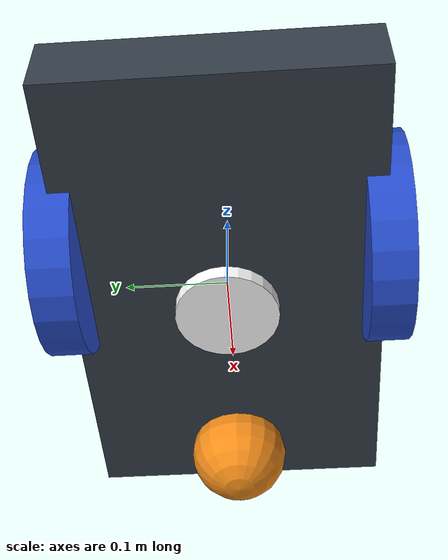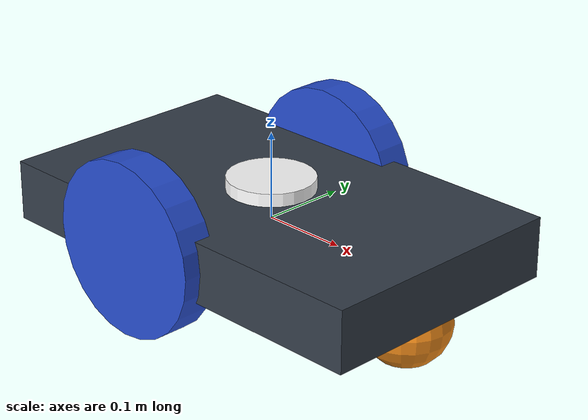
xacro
<?xml version="1.0" ?>

<robot name="iabot" xmlns:xacro="https://www.ros.org/wiki/xacro" >

  <xacro:include filename="$(find iabot_description)/urdf/materials.xacro" />
  <xacro:include filename="$(find iabot_description)/urdf/gazebo.xacro" />
  <xacro:include filename="$(find iabot_description)/urdf/macro.xacro" />

  <!-- Defining link chassis -->
  <link name="base_link">
    <!-- pose and inertial -->
    <pose>0 0 0.1 0 0 0</pose>

    <!-- Inertial properties -->
    <inertial>
      <mass value="5"/>
      <origin rpy="0 0 0" xyz="0 0 0.1"/>
      <inertia ixx="0.0395416666667" ixy="0" ixz="0" iyy="0.106208333333" iyz="0" izz="0.106208333333"/>
    </inertial>
    <!-- Collision properties -->
    <collision name="collision_chassis">
      <geometry>
        <box size="0.5 0.3 0.07"/>
      </geometry>
    </collision>
    <!-- Visual properties -->
    <visual>
      <origin rpy="0 0 0" xyz="0 0 0"/>
      <geometry>
        <box size="0.5 0.3 0.07"/>
      </geometry>
      <material name="blue"/>
    </visual>

    <!-- caster front -->
    <collision name="caster_front_collision">
      <origin rpy=" 0 0 0" xyz="0.35 0 -0.05"/>
      <geometry>
        <sphere radius="0.05"/>
      </geometry>
      <surface>
        <friction>
          <ode>
            <mu>0</mu>
            <mu2>0</mu2>
            <slip1>1.0</slip1>
            <slip2>1.0</slip2>
          </ode>
        </friction>
      </surface>
    </collision>
    <visual name="caster_front_visual">
      <origin rpy=" 0 0 0" xyz="0.2 0 -0.05"/>
      <geometry>
        <sphere radius="0.05"/>
      </geometry>
    </visual>
    </link>

  <!--
    Replace the wheel links with the following lines for macros:
  -->
  <xacro:link_wheel name="link_right_wheel" />
  <xacro:link_wheel name="link_left_wheel" />

  <xacro:joint_wheel name="joint_right_wheel"  child="link_right_wheel"  origin_xyz="-0.05 0.15 0"  />
  <xacro:joint_wheel name="joint_left_wheel"   child="link_left_wheel"   origin_xyz="-0.05 -0.15 0"  />

  <!--
    Adding a laser scan sensor to the robot
  -->
  <link name="laser_link">
    <inertial>
      <origin xyz="0 0 0" rpy="0 0 0"/>
      <mass value="1" />
      <!-- RANDOM INERTIA BELOW -->

      <xacro:cylinder_inertia mass="1" r="0.05" l="0.1" />

    </inertial>

    <visual>
      <origin xyz="0 0 0" rpy="0 0 0" />
      <geometry>
        <cylinder radius="0.05" length="0.1"/>
      </geometry>
      <material name="white" />
    </visual>

    <collision>
      <origin xyz="0 0 0" rpy="0 0 0"/>
      <geometry>
        <cylinder radius="0.05" length="0.1"/>
      </geometry>
    </collision>
  </link>

  <joint name="joint_sensor_laser" type="fixed">
    <origin xyz="0 0 0" rpy="0 0 0"/>
    <parent link="base_link"/>
    <child link="laser_link"/>
  </joint>

  <gazebo reference="laser_link">
    <sensor type="ray" name="head_hokuyo_sensor">
      <pose>0 0 0 0 0 0</pose>
      <visualize>false</visualize>
      <update_rate>20</update_rate>
      <ray>
        <scan>
          <horizontal>
            <samples>720</samples>
            <resolution>1</resolution>
            <min_angle>-1.570796</min_angle>
            <max_angle>1.570796</max_angle>
          </horizontal>
        </scan>
        <range>
          <min>0.10</min>
          <max>10.0</max>
          <resolution>0.01</resolution>
        </range>
        <noise>
          <type>gaussian</type>
          <mean>0.0</mean>
          <stddev>0.01</stddev>
        </noise>
      </ray>
      <plugin name="gazebo_ros_head_hokuyo_controller" filename="libgazebo_ros_laser.so">
        <topicName>/m2wr/laser/scan</topicName>
        <frameName>sensor_laser</frameName>
      </plugin>
    </sensor>
  </gazebo>

</robot>

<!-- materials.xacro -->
<!--
  We are splitting the xacro file into smaller files
-->
<robot name="iabot" xmlns:xacro="https://www.ros.org/wiki/xacro" >
  <!-- Define used colors -->
  <material name="black">
    <color rgba="0.0 0.0 0.0 1.0"/>
  </material>
  <material name="blue">
    <color rgba="0.203125 0.23828125 0.28515625 1.0"/>
  </material>
  <material name="green">
    <color rgba="0.0 0.8 0.0 1.0"/>
  </material>
  <material name="grey">
    <color rgba="0.2 0.2 0.2 1.0"/>
  </material>
  <material name="orange">
    <color rgba="1.0 0.423529411765 0.0392156862745 1.0"/>
  </material>
  <material name="brown">
    <color rgba="0.870588235294 0.811764705882 0.764705882353 1.0"/>
  </material>
  <material name="red">
    <color rgba="0.80078125 0.12890625 0.1328125 1.0"/>
  </material>
  <material name="white">
    <color rgba="1.0 1.0 1.0 1.0"/>
  </material>
</robot>

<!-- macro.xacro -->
<!--
  we will use macros, which are like functions, to reduce the remaining code in m2wr.xacro file.
-->
<robot xmlns:xacro="http://www.ros.org/wiki/xacro">
    <xacro:macro name="link_wheel" params="name">
        <link name="${name}">
            <inertial>
              <mass value="0.2"/>
              <origin rpy="0 1.5707 1.5707" xyz="0 0 0"/>
              <inertia ixx="0.000526666666667" ixy="0" ixz="0" iyy="0.000526666666667" iyz="0" izz="0.001"/>
            </inertial>
            <collision name="link_right_wheel_collision">
              <origin rpy="0 1.5707 1.5707" xyz="0 0 0"/>
              <geometry>
                <cylinder length="0.04" radius="0.1"/>
              </geometry>
            </collision>
            <visual name="${name}_visual">
              <origin rpy="0 1.5707 1.5707" xyz="0 0 0"/>
              <geometry>
                <cylinder length="0.04" radius="0.1"/>
              </geometry>
            </visual>
        </link>
    </xacro:macro>

    <!--
      The second macro accepts three parameters name, child and origin_xyz and it creates a joint link.
    -->
    <xacro:macro name="joint_wheel" params="name child origin_xyz">
      <joint name="${name}" type="continuous">
        <origin rpy="0 0 0" xyz="${origin_xyz}"/>
        <child link="${child}"/>
        <parent link="base_link"/>
        <axis rpy="0 0 0" xyz="0 1 0"/>
        <limit effort="10000" velocity="1000"/>
        <joint_properties damping="1.0" friction="1.0"/>
      </joint>
    </xacro:macro>

    <!--
      new macro for controlling the moment of inertia of the sensor cilinder
    -->
    <xacro:macro name="cylinder_inertia" params="mass r l">
      <inertia ixx="${mass*(3*r*r+l*l)/12}" ixy = "0" ixz = "0" iyy="${mass*(3*r*r+l*l)/12}" iyz = "0" izz="${mass*(r*r)/2}" />
    </xacro:macro>

</robot>
